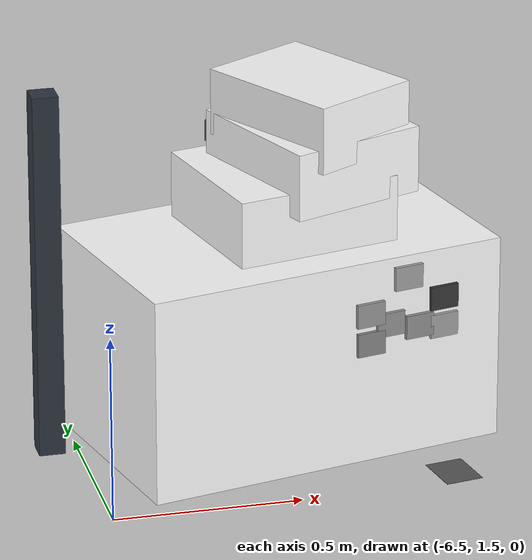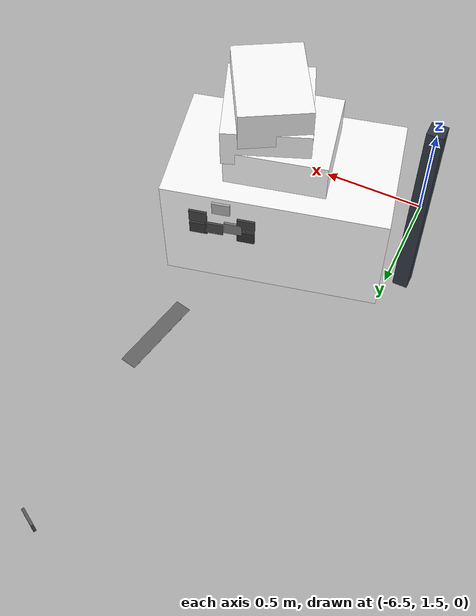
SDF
<sdf version="1.9">
 <world name="warehouse_irregular">
  <model name="concrete_patch_97">
   <static>true</static>
   <pose>-5.575163281737106 1.5704344509851857 0.0006 0 0 -1.4004178155496751</pose>
   <link name="body">
    <visual name="surface">
     <geometry><box><size>0.13007607690484088 0.1018538288844348 0.001</size></box></geometry>
     <material>
      <ambient>0.33827100915329056 0.33827100915329056 0.33827100915329056 1</ambient>
      <diffuse>0.33827100915329056 0.33827100915329056 0.33827100915329056 1</diffuse>
     </material>
    </visual>
   </link>
  </model>
  <model name="concrete_patch_237">
   <static>true</static>
   <pose>-5.668474965116106 2.727555351140108 0.0006 0 0 -1.7765090826767815</pose>
   <link name="body">
    <visual name="surface">
     <geometry><box><size>0.38537885915606945 0.07666520895540938 0.001</size></box></geometry>
     <material>
      <ambient>0.3969015088752957 0.3969015088752957 0.3969015088752957 1</ambient>
      <diffuse>0.3969015088752957 0.3969015088752957 0.3969015088752957 1</diffuse>
     </material>
    </visual>
   </link>
  </model>
  <model name="panel_17_3_-1">
   <static>true</static>
   <pose>-5.693674724672604 3.7430653559001215 0.1683285035283565 0 0 -0.5222800066137746</pose>
   <link name="body">
    <visual name="surface">
     <geometry><box><size>0.08 0.012 0.065</size></box></geometry>
     <material>
      <ambient>0.34333129846904925 0.34333129846904925 0.34333129846904925 1</ambient>
      <diffuse>0.34333129846904925 0.34333129846904925 0.34333129846904925 1</diffuse>
     </material>
    </visual>
   </link>
  </model>
  <model name="cabinet_19">
   <static>true</static>
   <pose>-5.951357077723463 1.9614683362619467 0.27998004438694746 0 0 0.2237441225364054</pose>
   <link name="body">
    <visual name="surface">
     <geometry><box><size>1 0.6 0.5599600887738949</size></box></geometry>
     <material>
      <ambient>1 1 1 1</ambient>
      <diffuse>1 1 1 1</diffuse>
      <pbr>
       <metal>
        <albedo_map>model://feature_warehouse_materials/textures/storage_19.png</albedo_map>
        <roughness>.9</roughness>
        <metalness>0</metalness>
       </metal>
      </pbr>
     </material>
    </visual>
    <collision name="solid"><geometry><box><size>1 0.6 0.5599600887738949</size></box></geometry></collision>
   </link>
  </model>
  <model name="panel_19_0_-1">
   <static>true</static>
   <pose>-5.714438190781617 1.702583274256083 0.37950076909658104 0 0 0.2237441225364054</pose>
   <link name="body">
    <visual name="surface">
     <geometry><box><size>0.08 0.012 0.065</size></box></geometry>
     <material>
      <ambient>0.5719659956156875 0.5719659956156875 0.5719659956156875 1</ambient>
      <diffuse>0.5719659956156875 0.5719659956156875 0.5719659956156875 1</diffuse>
     </material>
    </visual>
   </link>
  </model>
  <model name="panel_19_0_1">
   <static>true</static>
   <pose>-5.849786189162025 2.2973781290879125 0.37950076909658104 0 0 0.2237441225364054</pose>
   <link name="body">
    <visual name="surface">
     <geometry><box><size>0.08 0.012 0.065</size></box></geometry>
     <material>
      <ambient>0.4770997802432829 0.4770997802432829 0.4770997802432829 1</ambient>
      <diffuse>0.4770997802432829 0.4770997802432829 0.4770997802432829 1</diffuse>
     </material>
    </visual>
   </link>
  </model>
  <model name="panel_19_1_-1">
   <static>true</static>
   <pose>-5.561025920391194 1.7374928629246136 0.34820187610929 0 0 0.2237441225364054</pose>
   <link name="body">
    <visual name="surface">
     <geometry><box><size>0.08 0.012 0.065</size></box></geometry>
     <material>
      <ambient>0.6282548845850645 0.6282548845850645 0.6282548845850645 1</ambient>
      <diffuse>0.6282548845850645 0.6282548845850645 0.6282548845850645 1</diffuse>
     </material>
    </visual>
   </link>
  </model>
  <model name="panel_19_1_1">
   <static>true</static>
   <pose>-5.696373918771602 2.332287717756443 0.34820187610929 0 0 0.2237441225364054</pose>
   <link name="body">
    <visual name="surface">
     <geometry><box><size>0.08 0.012 0.065</size></box></geometry>
     <material>
      <ambient>0.21823191792070845 0.21823191792070845 0.21823191792070845 1</ambient>
      <diffuse>0.21823191792070845 0.21823191792070845 0.21823191792070845 1</diffuse>
     </material>
    </visual>
   </link>
  </model>
  <model name="panel_19_2_-1">
   <static>true</static>
   <pose>-5.631261553834791 1.7215104576896882 0.3595397073204807 0 0 0.2237441225364054</pose>
   <link name="body">
    <visual name="surface">
     <geometry><box><size>0.08 0.012 0.065</size></box></geometry>
     <material>
      <ambient>0.5592745199273703 0.5592745199273703 0.5592745199273703 1</ambient>
      <diffuse>0.5592745199273703 0.5592745199273703 0.5592745199273703 1</diffuse>
     </material>
    </visual>
   </link>
  </model>
  <model name="panel_19_2_1">
   <static>true</static>
   <pose>-5.766609552215199 2.316305312521518 0.3595397073204807 0 0 0.2237441225364054</pose>
   <link name="body">
    <visual name="surface">
     <geometry><box><size>0.08 0.012 0.065</size></box></geometry>
     <material>
      <ambient>0.28648928691565867 0.28648928691565867 0.28648928691565867 1</ambient>
      <diffuse>0.28648928691565867 0.28648928691565867 0.28648928691565867 1</diffuse>
     </material>
    </visual>
   </link>
  </model>
  <model name="panel_19_3_-1">
   <static>true</static>
   <pose>-5.77023686041551 1.6898860590971312 0.33494982743867774 0 0 0.2237441225364054</pose>
   <link name="body">
    <visual name="surface">
     <geometry><box><size>0.08 0.012 0.065</size></box></geometry>
     <material>
      <ambient>0.5239236812580139 0.5239236812580139 0.5239236812580139 1</ambient>
      <diffuse>0.5239236812580139 0.5239236812580139 0.5239236812580139 1</diffuse>
     </material>
    </visual>
   </link>
  </model>
  <model name="panel_19_3_1">
   <static>true</static>
   <pose>-5.905584858795918 2.2846809139289608 0.33494982743867774 0 0 0.2237441225364054</pose>
   <link name="body">
    <visual name="surface">
     <geometry><box><size>0.08 0.012 0.065</size></box></geometry>
     <material>
      <ambient>0.18574423189723263 0.18574423189723263 0.18574423189723263 1</ambient>
      <diffuse>0.18574423189723263 0.18574423189723263 0.18574423189723263 1</diffuse>
     </material>
    </visual>
   </link>
  </model>
  <model name="panel_19_4_-1">
   <static>true</static>
   <pose>-5.7716004837039145 1.6895757610487687 0.4165108439474685 0 0 0.2237441225364054</pose>
   <link name="body">
    <visual name="surface">
     <geometry><box><size>0.08 0.012 0.065</size></box></geometry>
     <material>
      <ambient>0.5906516223982322 0.5906516223982322 0.5906516223982322 1</ambient>
      <diffuse>0.5906516223982322 0.5906516223982322 0.5906516223982322 1</diffuse>
     </material>
    </visual>
   </link>
  </model>
  <model name="panel_19_4_1">
   <static>true</static>
   <pose>-5.906948482084322 2.284370615880598 0.4165108439474685 0 0 0.2237441225364054</pose>
   <link name="body">
    <visual name="surface">
     <geometry><box><size>0.08 0.012 0.065</size></box></geometry>
     <material>
      <ambient>0.24077205971100257 0.24077205971100257 0.24077205971100257 1</ambient>
      <diffuse>0.24077205971100257 0.24077205971100257 0.24077205971100257 1</diffuse>
     </material>
    </visual>
   </link>
  </model>
  <model name="panel_19_5_-1">
   <static>true</static>
   <pose>-5.560965991779364 1.737506499924986 0.4264279606090208 0 0 0.2237441225364054</pose>
   <link name="body">
    <visual name="surface">
     <geometry><box><size>0.08 0.012 0.065</size></box></geometry>
     <material>
      <ambient>0.2117783824866231 0.2117783824866231 0.2117783824866231 1</ambient>
      <diffuse>0.2117783824866231 0.2117783824866231 0.2117783824866231 1</diffuse>
     </material>
    </visual>
   </link>
  </model>
  <model name="panel_19_5_1">
   <static>true</static>
   <pose>-5.696313990159772 2.3323013547568157 0.4264279606090208 0 0 0.2237441225364054</pose>
   <link name="body">
    <visual name="surface">
     <geometry><box><size>0.08 0.012 0.065</size></box></geometry>
     <material>
      <ambient>0.2545423640586344 0.2545423640586344 0.2545423640586344 1</ambient>
      <diffuse>0.2545423640586344 0.2545423640586344 0.2545423640586344 1</diffuse>
     </material>
    </visual>
   </link>
  </model>
  <model name="panel_19_6_-1">
   <static>true</static>
   <pose>-5.663847759056727 1.714095333608211 0.5013393091839561 0 0 0.2237441225364054</pose>
   <link name="body">
    <visual name="surface">
     <geometry><box><size>0.08 0.012 0.065</size></box></geometry>
     <material>
      <ambient>0.6269711363330047 0.6269711363330047 0.6269711363330047 1</ambient>
      <diffuse>0.6269711363330047 0.6269711363330047 0.6269711363330047 1</diffuse>
     </material>
    </visual>
   </link>
  </model>
  <model name="panel_19_6_1">
   <static>true</static>
   <pose>-5.7991957574371344 2.3088901884400403 0.5013393091839561 0 0 0.2237441225364054</pose>
   <link name="body">
    <visual name="surface">
     <geometry><box><size>0.08 0.012 0.065</size></box></geometry>
     <material>
      <ambient>0.6837811531414498 0.6837811531414498 0.6837811531414498 1</ambient>
      <diffuse>0.6837811531414498 0.6837811531414498 0.6837811531414498 1</diffuse>
     </material>
    </visual>
   </link>
  </model>
  <model name="carton_19_0">
   <static>true</static>
   <pose>-5.936369356757168 1.9614683362619467 0.6599600887738949 0 0 0.2237441225364054</pose>
   <link name="body">
    <visual name="surface">
     <geometry><box><size>0.45 0.42 0.18</size></box></geometry>
     <material>
      <ambient>1 1 1 1</ambient>
      <diffuse>1 1 1 1</diffuse>
      <pbr>
       <metal>
        <albedo_map>model://feature_warehouse_materials/textures/storage_19.png</albedo_map>
        <roughness>.9</roughness>
        <metalness>0</metalness>
       </metal>
      </pbr>
     </material>
    </visual>
    <collision name="solid"><geometry><box><size>0.45 0.42 0.18</size></box></geometry></collision>
   </link>
  </model>
  <model name="carton_19_1">
   <static>true</static>
   <pose>-5.8600625526507 1.9614683362619467 0.7799600887738949 0 0 0.37374412253640543</pose>
   <link name="body">
    <visual name="surface">
     <geometry><box><size>0.38 0.42 0.18</size></box></geometry>
     <material>
      <ambient>1 1 1 1</ambient>
      <diffuse>1 1 1 1</diffuse>
      <pbr>
       <metal>
        <albedo_map>model://feature_warehouse_materials/textures/storage_19.png</albedo_map>
        <roughness>.9</roughness>
        <metalness>0</metalness>
       </metal>
      </pbr>
     </material>
    </visual>
    <collision name="solid"><geometry><box><size>0.38 0.42 0.18</size></box></geometry></collision>
   </link>
  </model>
  <model name="carton_19_2">
   <static>true</static>
   <pose>-5.8676915138698575 1.9614683362619467 0.8999600887738949 0 0 0.5237441225364055</pose>
   <link name="body">
    <visual name="surface">
     <geometry><box><size>0.31 0.42 0.18</size></box></geometry>
     <material>
      <ambient>1 1 1 1</ambient>
      <diffuse>1 1 1 1</diffuse>
      <pbr>
       <metal>
        <albedo_map>model://feature_warehouse_materials/textures/storage_19.png</albedo_map>
        <roughness>.9</roughness>
        <metalness>0</metalness>
       </metal>
      </pbr>
     </material>
    </visual>
    <collision name="solid"><geometry><box><size>0.31 0.42 0.18</size></box></geometry></collision>
   </link>
  </model>
  <model name="post_19_-1">
   <static>true</static>
   <pose>-6.571357077723463 1.9614683362619467 0.5 0 0 0</pose>
   <link name="body">
    <visual name="surface">
     <geometry><box><size>0.07 0.07 1</size></box></geometry>
     <material><ambient>0.18 0.21 0.25 1</ambient><diffuse>0.18 0.21 0.25 1</diffuse></material>
    </visual>
    <collision name="solid"><geometry><box><size>0.07 0.07 1</size></box></geometry></collision>
   </link>
  </model>
 </world>
</sdf>
